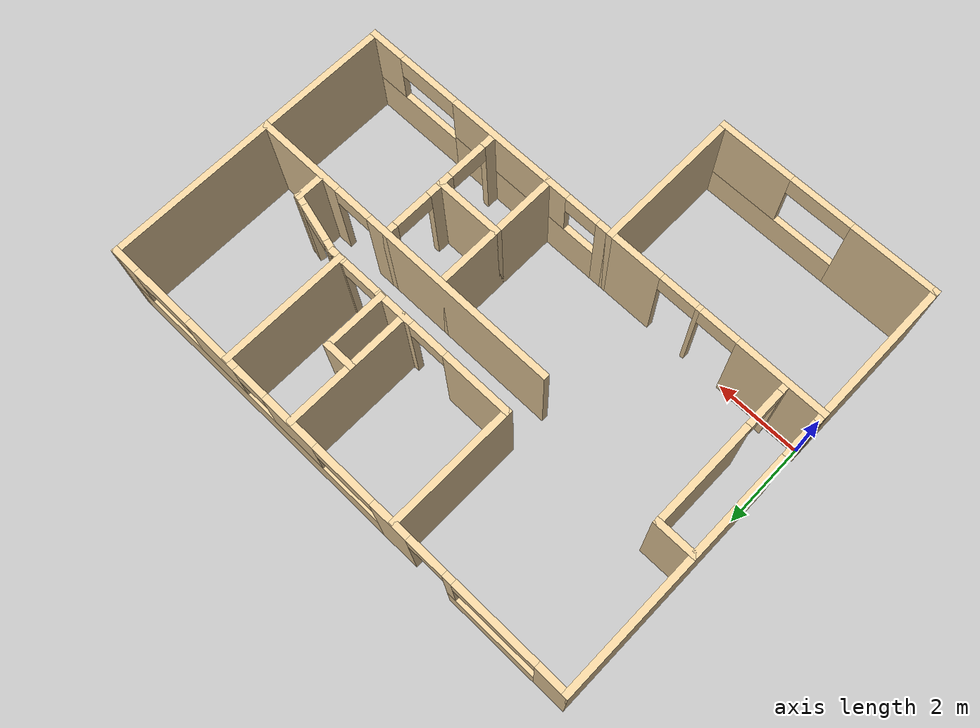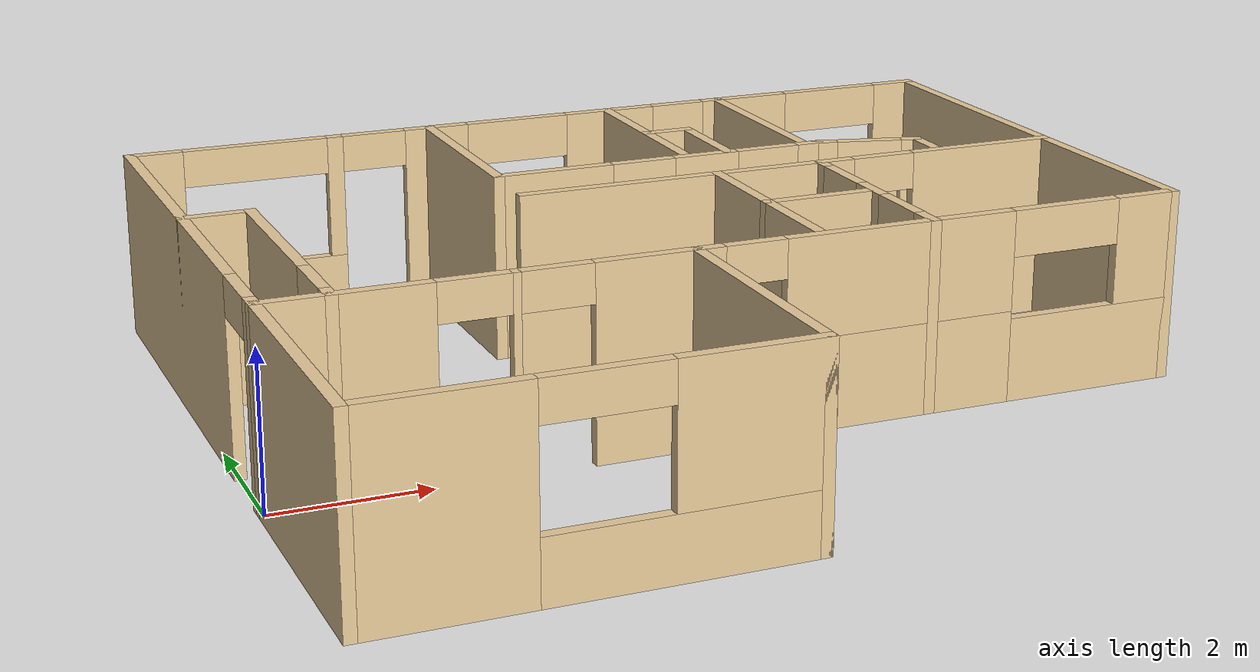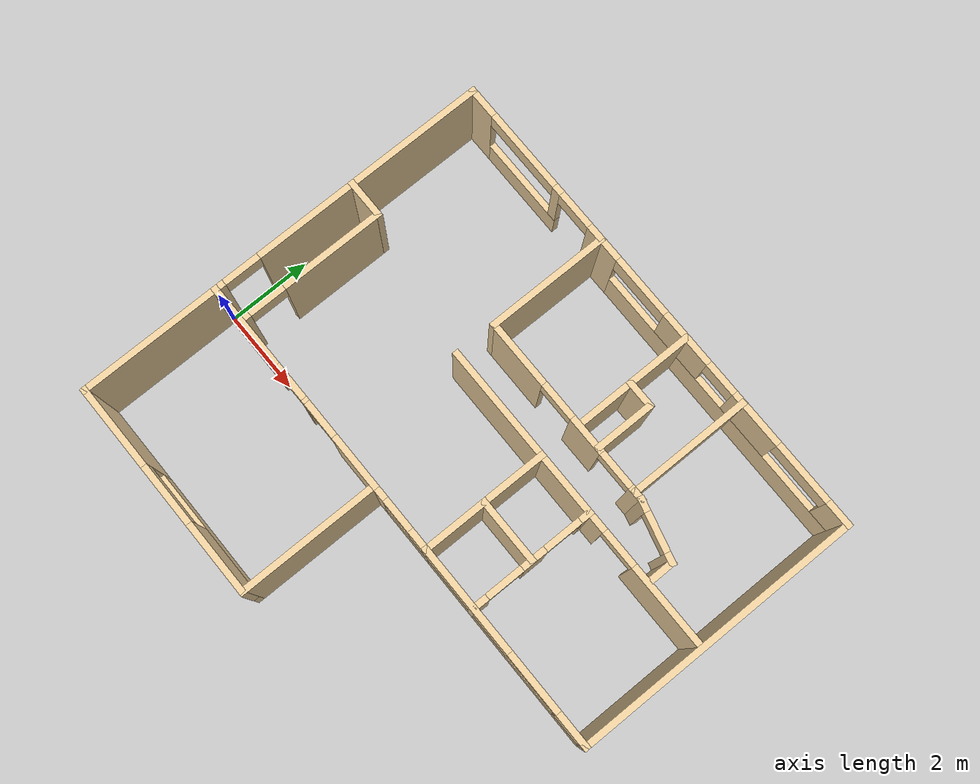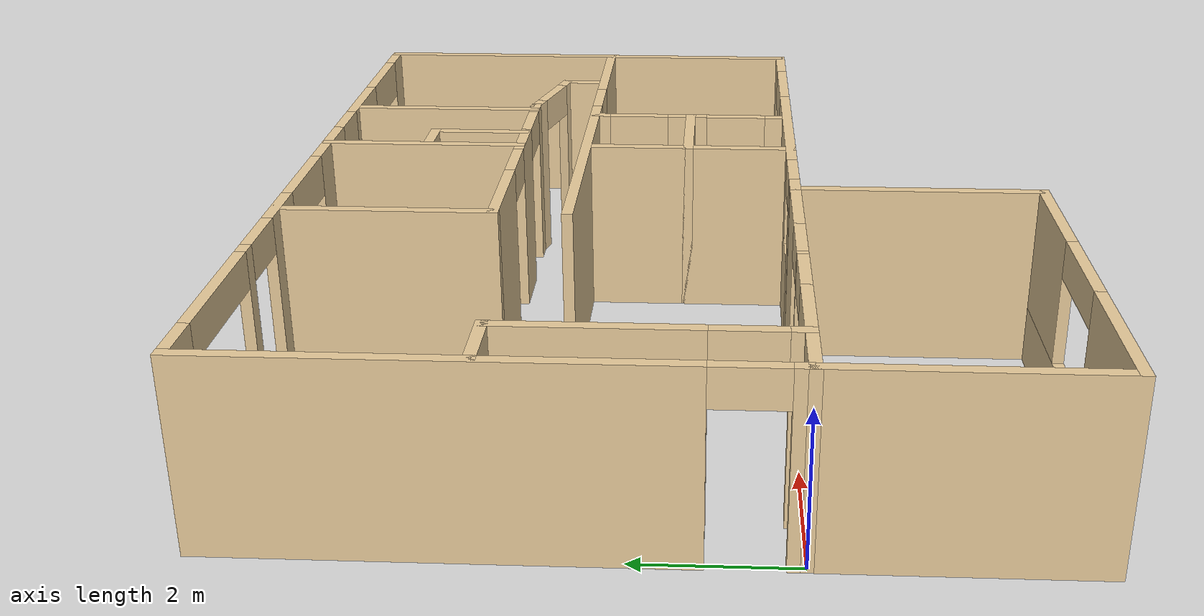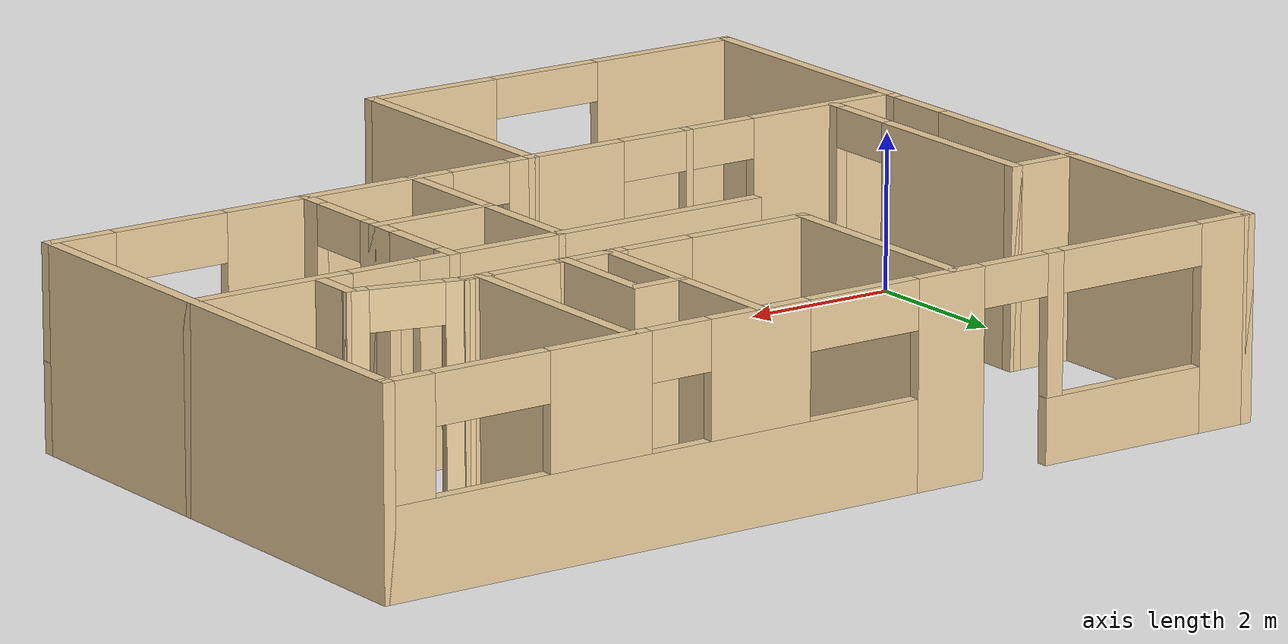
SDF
<?xml version='1.0'?>
<sdf version='1.6'>
  <model name='SupaHouse'>
    <pose frame=''>5.925 1.75 0 0 -0 0</pose>
    <link name='Wall_0'>
      <pose frame=''>-3.3 -1.75 0 0 -0 0</pose>
      <visual name='Wall_0_Visual_0'>
        <pose frame=''>-1.6375 0 1.25 0 -0 0</pose>
        <geometry>
          <box>
            <size>2.125 0.15 2.5</size>
          </box>
        </geometry>
        <material>
          <script>
            <uri>file://media/materials/scripts/gazebo.material</uri>
            <name>Gazebo/Grey</name>
          </script>
          <ambient>0.921569 0.807843 0.615686 1</ambient>
        </material>
        <meta>
          <layer>0</layer>
        </meta>
      </visual>
      <collision name='Wall_0_Collision_0'>
        <geometry>
          <box>
            <size>2.125 0.15 2.5</size>
          </box>
        </geometry>
        <pose frame=''>-1.6375 0 1.25 0 -0 0</pose>
      </collision>
      <visual name='Wall_0_Visual_1'>
        <pose frame=''>0.375 0 1.25 0 -0 0</pose>
        <geometry>
          <box>
            <size>0.1 0.15 2.5</size>
          </box>
        </geometry>
        <material>
          <script>
            <uri>file://media/materials/scripts/gazebo.material</uri>
            <name>Gazebo/Grey</name>
          </script>
          <ambient>0.921569 0.807843 0.615686 1</ambient>
        </material>
        <meta>
          <layer>0</layer>
        </meta>
      </visual>
      <collision name='Wall_0_Collision_1'>
        <geometry>
          <box>
            <size>0.1 0.15 2.5</size>
          </box>
        </geometry>
        <pose frame=''>0.375 0 1.25 0 -0 0</pose>
      </collision>
      <visual name='Wall_0_Visual_2'>
        <pose frame=''>2.0125 0 1.25 0 -0 0</pose>
        <geometry>
          <box>
            <size>1.375 0.15 2.5</size>
          </box>
        </geometry>
        <material>
          <script>
            <uri>file://media/materials/scripts/gazebo.material</uri>
            <name>Gazebo/Grey</name>
          </script>
          <ambient>0.921569 0.807843 0.615686 1</ambient>
        </material>
        <meta>
          <layer>0</layer>
        </meta>
      </visual>
      <collision name='Wall_0_Collision_2'>
        <geometry>
          <box>
            <size>1.375 0.15 2.5</size>
          </box>
        </geometry>
        <pose frame=''>2.0125 0 1.25 0 -0 0</pose>
      </collision>
      <visual name='Wall_0_Visual_3'>
        <pose frame=''>-0.125 0 2.25 0 -0 0</pose>
        <geometry>
          <box>
            <size>0.9 0.15 0.5</size>
          </box>
        </geometry>
        <material>
          <script>
            <uri>file://media/materials/scripts/gazebo.material</uri>
            <name>Gazebo/Grey</name>
          </script>
          <ambient>0.921569 0.807843 0.615686 1</ambient>
        </material>
        <meta>
          <layer>0</layer>
        </meta>
      </visual>
      <collision name='Wall_0_Collision_3'>
        <geometry>
          <box>
            <size>0.9 0.15 0.5</size>
          </box>
        </geometry>
        <pose frame=''>-0.125 0 2.25 0 -0 0</pose>
      </collision>
      <visual name='Wall_0_Visual_4'>
        <pose frame=''>0.875 0 2.25 0 -0 0</pose>
        <geometry>
          <box>
            <size>0.9 0.15 0.5</size>
          </box>
        </geometry>
        <material>
          <script>
            <uri>file://media/materials/scripts/gazebo.material</uri>
            <name>Gazebo/Grey</name>
          </script>
          <ambient>0.921569 0.807843 0.615686 1</ambient>
        </material>
        <meta>
          <layer>0</layer>
        </meta>
      </visual>
      <collision name='Wall_0_Collision_4'>
        <geometry>
          <box>
            <size>0.9 0.15 0.5</size>
          </box>
        </geometry>
        <pose frame=''>0.875 0 2.25 0 -0 0</pose>
      </collision>
    </link>
    <link name='Wall_11'>
      <pose frame=''>2.625 -1.75 0 0 -0 0</pose>
      <visual name='Wall_11_Visual_0'>
        <pose frame=''>-3.1625 0 1.25 0 -0 0</pose>
        <geometry>
          <box>
            <size>0.425 0.15 2.5</size>
          </box>
        </geometry>
        <material>
          <script>
            <uri>file://media/materials/scripts/gazebo.material</uri>
            <name>Gazebo/Grey</name>
          </script>
          <ambient>0.921569 0.807843 0.615686 1</ambient>
        </material>
        <meta>
          <layer>0</layer>
        </meta>
      </visual>
      <collision name='Wall_11_Collision_0'>
        <geometry>
          <box>
            <size>0.425 0.15 2.5</size>
          </box>
        </geometry>
        <pose frame=''>-3.1625 0 1.25 0 -0 0</pose>
      </collision>
      <visual name='Wall_11_Visual_1'>
        <pose frame=''>-0.987667 0 0.6 0 -0 0</pose>
        <geometry>
          <box>
            <size>3.92467 0.15 1.2</size>
          </box>
        </geometry>
        <material>
          <script>
            <uri>file://media/materials/scripts/gazebo.material</uri>
            <name>Gazebo/Grey</name>
          </script>
          <ambient>0.921569 0.807843 0.615686 1</ambient>
        </material>
        <meta>
          <layer>0</layer>
        </meta>
      </visual>
      <collision name='Wall_11_Collision_1'>
        <geometry>
          <box>
            <size>3.92467 0.15 1.2</size>
          </box>
        </geometry>
        <pose frame=''>-0.987667 0 0.6 0 -0 0</pose>
      </collision>
      <visual name='Wall_11_Visual_2'>
        <pose frame=''>2.17483 0 0.55 0 -0 0</pose>
        <geometry>
          <box>
            <size>2.40033 0.15 1.1</size>
          </box>
        </geometry>
        <material>
          <script>
            <uri>file://media/materials/scripts/gazebo.material</uri>
            <name>Gazebo/Grey</name>
          </script>
          <ambient>0.921569 0.807843 0.615686 1</ambient>
        </material>
        <meta>
          <layer>0</layer>
        </meta>
      </visual>
      <collision name='Wall_11_Collision_2'>
        <geometry>
          <box>
            <size>2.40033 0.15 1.1</size>
          </box>
        </geometry>
        <pose frame=''>2.17483 0 0.55 0 -0 0</pose>
      </collision>
      <visual name='Wall_11_Visual_3'>
        <pose frame=''>2.92483 0 1.8 0 -0 0</pose>
        <geometry>
          <box>
            <size>0.900333 0.15 1.4</size>
          </box>
        </geometry>
        <material>
          <script>
            <uri>file://media/materials/scripts/gazebo.material</uri>
            <name>Gazebo/Grey</name>
          </script>
          <ambient>0.921569 0.807843 0.615686 1</ambient>
        </material>
        <meta>
          <layer>0</layer>
        </meta>
      </visual>
      <collision name='Wall_11_Collision_3'>
        <geometry>
          <box>
            <size>0.900333 0.15 1.4</size>
          </box>
        </geometry>
        <pose frame=''>2.92483 0 1.8 0 -0 0</pose>
      </collision>
      <visual name='Wall_11_Visual_4'>
        <pose frame=''>-0.587667 0 1.85 0 -0 0</pose>
        <geometry>
          <box>
            <size>3.12467 0.15 1.3</size>
          </box>
        </geometry>
        <material>
          <script>
            <uri>file://media/materials/scripts/gazebo.material</uri>
            <name>Gazebo/Grey</name>
          </script>
          <ambient>0.921569 0.807843 0.615686 1</ambient>
        </material>
        <meta>
          <layer>0</layer>
        </meta>
      </visual>
      <collision name='Wall_11_Collision_4'>
        <geometry>
          <box>
            <size>3.12467 0.15 1.3</size>
          </box>
        </geometry>
        <pose frame=''>-0.587667 0 1.85 0 -0 0</pose>
      </collision>
      <visual name='Wall_11_Visual_5'>
        <pose frame=''>1.72467 0 2.2 0 -0 0</pose>
        <geometry>
          <box>
            <size>1.5 0.15 0.6</size>
          </box>
        </geometry>
        <material>
          <script>
            <uri>file://media/materials/scripts/gazebo.material</uri>
            <name>Gazebo/Grey</name>
          </script>
          <ambient>0.921569 0.807843 0.615686 1</ambient>
        </material>
        <meta>
          <layer>0</layer>
        </meta>
      </visual>
      <collision name='Wall_11_Collision_5'>
        <geometry>
          <box>
            <size>1.5 0.15 0.6</size>
          </box>
        </geometry>
        <pose frame=''>1.72467 0 2.2 0 -0 0</pose>
      </collision>
      <visual name='Wall_11_Visual_6'>
        <pose frame=''>-2.55 0 2.25 0 -0 0</pose>
        <geometry>
          <box>
            <size>0.8 0.15 0.5</size>
          </box>
        </geometry>
        <material>
          <script>
            <uri>file://media/materials/scripts/gazebo.material</uri>
            <name>Gazebo/Grey</name>
          </script>
          <ambient>0.921569 0.807843 0.615686 1</ambient>
        </material>
        <meta>
          <layer>0</layer>
        </meta>
      </visual>
      <collision name='Wall_11_Collision_6'>
        <geometry>
          <box>
            <size>0.8 0.15 0.5</size>
          </box>
        </geometry>
        <pose frame=''>-2.55 0 2.25 0 -0 0</pose>
      </collision>
    </link>
    <link name='Wall_13'>
      <collision name='Wall_13_Collision'>
        <geometry>
          <box>
            <size>1 0.15 2.5</size>
          </box>
        </geometry>
        <pose frame=''>0 0 1.25 0 -0 0</pose>
      </collision>
      <visual name='Wall_13_Visual'>
        <pose frame=''>0 0 1.25 0 -0 0</pose>
        <geometry>
          <box>
            <size>1 0.15 2.5</size>
          </box>
        </geometry>
        <material>
          <script>
            <uri>file://media/materials/scripts/gazebo.material</uri>
            <name>Gazebo/Grey</name>
          </script>
          <ambient>0.921569 0.807843 0.615686 1</ambient>
        </material>
        <meta>
          <layer>0</layer>
        </meta>
      </visual>
      <pose frame=''>-5.5 1.85 0 0 -0 0</pose>
    </link>
    <link name='Wall_17'>
      <collision name='Wall_17_Collision'>
        <geometry>
          <box>
            <size>3 0.15 2.5</size>
          </box>
        </geometry>
        <pose frame=''>0 0 1.25 0 -0 0</pose>
      </collision>
      <visual name='Wall_17_Visual'>
        <pose frame=''>0 0 1.25 0 -0 0</pose>
        <geometry>
          <box>
            <size>3 0.15 2.5</size>
          </box>
        </geometry>
        <material>
          <script>
            <uri>file://media/materials/scripts/gazebo.material</uri>
            <name>Gazebo/Grey</name>
          </script>
          <ambient>0.921569 0.807843 0.615686 1</ambient>
        </material>
        <meta>
          <layer>0</layer>
        </meta>
      </visual>
      <pose frame=''>-1.725 3.653 0 0 0 -1.5708</pose>
    </link>
    <link name='Wall_2'>
      <collision name='Wall_2_Collision'>
        <geometry>
          <box>
            <size>3.5 0.15 2.5</size>
          </box>
        </geometry>
        <pose frame=''>0 0 1.25 0 -0 0</pose>
      </collision>
      <visual name='Wall_2_Visual'>
        <pose frame=''>0 0 1.25 0 -0 0</pose>
        <geometry>
          <box>
            <size>3.5 0.15 2.5</size>
          </box>
        </geometry>
        <material>
          <script>
            <uri>file://media/materials/scripts/gazebo.material</uri>
            <name>Gazebo/Grey</name>
          </script>
          <ambient>0.921569 0.807843 0.615686 1</ambient>
        </material>
        <meta>
          <layer>0</layer>
        </meta>
      </visual>
      <pose frame=''>-5.925 -3.425 0 0 0 -1.5708</pose>
    </link>
    <link name='Wall_26'>
      <collision name='Wall_26_Collision'>
        <geometry>
          <box>
            <size>3 0.15 2.5</size>
          </box>
        </geometry>
        <pose frame=''>0 0 1.25 0 -0 0</pose>
      </collision>
      <visual name='Wall_26_Visual'>
        <pose frame=''>0 0 1.25 0 -0 0</pose>
        <geometry>
          <box>
            <size>3 0.15 2.5</size>
          </box>
        </geometry>
        <material>
          <script>
            <uri>file://media/materials/scripts/gazebo.material</uri>
            <name>Gazebo/Grey</name>
          </script>
          <ambient>0.921569 0.807843 0.615686 1</ambient>
        </material>
        <meta>
          <layer>0</layer>
        </meta>
      </visual>
      <pose frame=''>0.975 3.662 0 0 -0 1.5708</pose>
    </link>
    <link name='Wall_28'>
      <collision name='Wall_28_Collision'>
        <geometry>
          <box>
            <size>0.75 0.15 2.5</size>
          </box>
        </geometry>
        <pose frame=''>0 0 1.25 0 -0 0</pose>
      </collision>
      <visual name='Wall_28_Visual'>
        <pose frame=''>0 0 1.25 0 -0 0</pose>
        <geometry>
          <box>
            <size>0.75 0.15 2.5</size>
          </box>
        </geometry>
        <material>
          <script>
            <uri>file://media/materials/scripts/gazebo.material</uri>
            <name>Gazebo/Grey</name>
          </script>
          <ambient>0.921569 0.807843 0.615686 1</ambient>
        </material>
        <meta>
          <layer>0</layer>
        </meta>
      </visual>
      <pose frame=''>1.279 3.6 0 0 -0 0</pose>
    </link>
    <link name='Wall_3'>
      <pose frame=''>-3.3 -5.1 0 0 -0 0</pose>
      <visual name='Wall_3_Visual_0'>
        <pose frame=''>-1.6625 0 1.25 0 -0 0</pose>
        <geometry>
          <box>
            <size>2.075 0.15 2.5</size>
          </box>
        </geometry>
        <material>
          <script>
            <uri>file://media/materials/scripts/gazebo.material</uri>
            <name>Gazebo/Grey</name>
          </script>
          <ambient>0.921569 0.807843 0.615686 1</ambient>
        </material>
        <meta>
          <layer>0</layer>
        </meta>
      </visual>
      <collision name='Wall_3_Collision_0'>
        <geometry>
          <box>
            <size>2.075 0.15 2.5</size>
          </box>
        </geometry>
        <pose frame=''>-1.6625 0 1.25 0 -0 0</pose>
      </collision>
      <visual name='Wall_3_Visual_1'>
        <pose frame=''>1.0375 0 0.4 0 -0 0</pose>
        <geometry>
          <box>
            <size>3.325 0.15 0.8</size>
          </box>
        </geometry>
        <material>
          <script>
            <uri>file://media/materials/scripts/gazebo.material</uri>
            <name>Gazebo/Grey</name>
          </script>
          <ambient>0.921569 0.807843 0.615686 1</ambient>
        </material>
        <meta>
          <layer>0</layer>
        </meta>
      </visual>
      <collision name='Wall_3_Collision_1'>
        <geometry>
          <box>
            <size>3.325 0.15 0.8</size>
          </box>
        </geometry>
        <pose frame=''>1.0375 0 0.4 0 -0 0</pose>
      </collision>
      <visual name='Wall_3_Visual_2'>
        <pose frame=''>1.7875 0 1.65 0 -0 0</pose>
        <geometry>
          <box>
            <size>1.825 0.15 1.7</size>
          </box>
        </geometry>
        <material>
          <script>
            <uri>file://media/materials/scripts/gazebo.material</uri>
            <name>Gazebo/Grey</name>
          </script>
          <ambient>0.921569 0.807843 0.615686 1</ambient>
        </material>
        <meta>
          <layer>0</layer>
        </meta>
      </visual>
      <collision name='Wall_3_Collision_2'>
        <geometry>
          <box>
            <size>1.825 0.15 1.7</size>
          </box>
        </geometry>
        <pose frame=''>1.7875 0 1.65 0 -0 0</pose>
      </collision>
      <visual name='Wall_3_Visual_3'>
        <pose frame=''>0.125 0 2.25 0 -0 0</pose>
        <geometry>
          <box>
            <size>1.5 0.15 0.5</size>
          </box>
        </geometry>
        <material>
          <script>
            <uri>file://media/materials/scripts/gazebo.material</uri>
            <name>Gazebo/Grey</name>
          </script>
          <ambient>0.921569 0.807843 0.615686 1</ambient>
        </material>
        <meta>
          <layer>0</layer>
        </meta>
      </visual>
      <collision name='Wall_3_Collision_3'>
        <geometry>
          <box>
            <size>1.5 0.15 0.5</size>
          </box>
        </geometry>
        <pose frame=''>0.125 0 2.25 0 -0 0</pose>
      </collision>
    </link>
    <link name='Wall_30'>
      <collision name='Wall_30_Collision'>
        <geometry>
          <box>
            <size>1.5 0.15 2.5</size>
          </box>
        </geometry>
        <pose frame=''>0 0 1.25 0 -0 0</pose>
      </collision>
      <visual name='Wall_30_Visual'>
        <pose frame=''>0 0 1.25 0 -0 0</pose>
        <geometry>
          <box>
            <size>1.5 0.15 2.5</size>
          </box>
        </geometry>
        <material>
          <script>
            <uri>file://media/materials/scripts/gazebo.material</uri>
            <name>Gazebo/Grey</name>
          </script>
          <ambient>0.921569 0.807843 0.615686 1</ambient>
        </material>
        <meta>
          <layer>0</layer>
        </meta>
      </visual>
      <pose frame=''>1.579 2.925 0 0 0 -1.5708</pose>
    </link>
    <link name='Wall_37'>
      <collision name='Wall_37_Collision'>
        <geometry>
          <box>
            <size>3 0.15 2.5</size>
          </box>
        </geometry>
        <pose frame=''>0 0 1.25 0 -0 0</pose>
      </collision>
      <visual name='Wall_37_Visual'>
        <pose frame=''>0 0 1.25 0 -0 0</pose>
        <geometry>
          <box>
            <size>3 0.15 2.5</size>
          </box>
        </geometry>
        <material>
          <script>
            <uri>file://media/materials/scripts/gazebo.material</uri>
            <name>Gazebo/Grey</name>
          </script>
          <ambient>0.921569 0.807843 0.615686 1</ambient>
        </material>
        <meta>
          <layer>0</layer>
        </meta>
      </visual>
      <pose frame=''>2.729 3.662 0 0 0 -1.5708</pose>
    </link>
    <link name='Wall_43'>
      <collision name='Wall_43_Collision'>
        <geometry>
          <box>
            <size>3.15 0.15 2.5</size>
          </box>
        </geometry>
        <pose frame=''>0 0 1.25 0 -0 0</pose>
      </collision>
      <visual name='Wall_43_Visual'>
        <pose frame=''>0 0 1.25 0 -0 0</pose>
        <geometry>
          <box>
            <size>3.15 0.15 2.5</size>
          </box>
        </geometry>
        <material>
          <script>
            <uri>file://media/materials/scripts/gazebo.material</uri>
            <name>Gazebo/Grey</name>
          </script>
          <ambient>0.921569 0.807843 0.615686 1</ambient>
        </material>
        <meta>
          <layer>0</layer>
        </meta>
      </visual>
      <pose frame=''>0.975 -0.25 0 0 0 -1.5708</pose>
    </link>
    <link name='Wall_45'>
      <collision name='Wall_45_Collision'>
        <geometry>
          <box>
            <size>0.65 0.15 2.5</size>
          </box>
        </geometry>
        <pose frame=''>0 0 1.25 0 -0 0</pose>
      </collision>
      <visual name='Wall_45_Visual'>
        <pose frame=''>0 0 1.25 0 -0 0</pose>
        <geometry>
          <box>
            <size>0.65 0.15 2.5</size>
          </box>
        </geometry>
        <material>
          <script>
            <uri>file://media/materials/scripts/gazebo.material</uri>
            <name>Gazebo/Grey</name>
          </script>
          <ambient>0.921569 0.807843 0.615686 1</ambient>
        </material>
        <meta>
          <layer>0</layer>
        </meta>
      </visual>
      <pose frame=''>4.275 1.628 0 0 -0 1.5708</pose>
    </link>
    <link name='Wall_5'>
      <collision name='Wall_5_Collision'>
        <geometry>
          <box>
            <size>3.5 0.15 2.5</size>
          </box>
        </geometry>
        <pose frame=''>0 0 1.25 0 -0 0</pose>
      </collision>
      <visual name='Wall_5_Visual'>
        <pose frame=''>0 0 1.25 0 -0 0</pose>
        <geometry>
          <box>
            <size>3.5 0.15 2.5</size>
          </box>
        </geometry>
        <material>
          <script>
            <uri>file://media/materials/scripts/gazebo.material</uri>
            <name>Gazebo/Grey</name>
          </script>
          <ambient>0.921569 0.807843 0.615686 1</ambient>
        </material>
        <meta>
          <layer>0</layer>
        </meta>
      </visual>
      <pose frame=''>-0.675 -3.425 0 0 0 -1.5708</pose>
    </link>
    <link name='Wall_52'>
      <pose frame=''>2.1 1.25 0 0 -0 0</pose>
      <visual name='Wall_52_Visual_0'>
        <pose frame=''>-1.525 0 1.25 0 -0 0</pose>
        <geometry>
          <box>
            <size>4.75 0.15 2.5</size>
          </box>
        </geometry>
        <material>
          <script>
            <uri>file://media/materials/scripts/gazebo.material</uri>
            <name>Gazebo/Grey</name>
          </script>
          <ambient>0.921569 0.807843 0.615686 1</ambient>
        </material>
        <meta>
          <layer>0</layer>
        </meta>
      </visual>
      <collision name='Wall_52_Collision_0'>
        <geometry>
          <box>
            <size>4.75 0.15 2.5</size>
          </box>
        </geometry>
        <pose frame=''>-1.525 0 1.25 0 -0 0</pose>
      </collision>
      <visual name='Wall_52_Visual_1'>
        <pose frame=''>2.825 0 1.25 0 -0 0</pose>
        <geometry>
          <box>
            <size>2.15 0.15 2.5</size>
          </box>
        </geometry>
        <material>
          <script>
            <uri>file://media/materials/scripts/gazebo.material</uri>
            <name>Gazebo/Grey</name>
          </script>
          <ambient>0.921569 0.807843 0.615686 1</ambient>
        </material>
        <meta>
          <layer>0</layer>
        </meta>
      </visual>
      <collision name='Wall_52_Collision_1'>
        <geometry>
          <box>
            <size>2.15 0.15 2.5</size>
          </box>
        </geometry>
        <pose frame=''>2.825 0 1.25 0 -0 0</pose>
      </collision>
      <visual name='Wall_52_Visual_2'>
        <pose frame=''>1.3 0 2.25 0 -0 0</pose>
        <geometry>
          <box>
            <size>0.9 0.15 0.5</size>
          </box>
        </geometry>
        <material>
          <script>
            <uri>file://media/materials/scripts/gazebo.material</uri>
            <name>Gazebo/Grey</name>
          </script>
          <ambient>0.921569 0.807843 0.615686 1</ambient>
        </material>
        <meta>
          <layer>0</layer>
        </meta>
      </visual>
      <collision name='Wall_52_Collision_2'>
        <geometry>
          <box>
            <size>0.9 0.15 0.5</size>
          </box>
        </geometry>
        <pose frame=''>1.3 0 2.25 0 -0 0</pose>
      </collision>
    </link>
    <link name='Wall_54'>
      <pose frame=''>2.475 -0.25 0 0 0 -1.5708</pose>
      <visual name='Wall_54_Visual_0'>
        <pose frame=''>-1.41404 0 1.25 0 -0 0</pose>
        <geometry>
          <box>
            <size>0.321921 0.15 2.5</size>
          </box>
        </geometry>
        <material>
          <script>
            <uri>file://media/materials/scripts/gazebo.material</uri>
            <name>Gazebo/Grey</name>
          </script>
          <ambient>0.921569 0.807843 0.615686 1</ambient>
        </material>
        <meta>
          <layer>0</layer>
        </meta>
      </visual>
      <collision name='Wall_54_Collision_0'>
        <geometry>
          <box>
            <size>0.321921 0.15 2.5</size>
          </box>
        </geometry>
        <pose frame=''>-1.41404 0 1.25 0 -0 0</pose>
      </collision>
      <visual name='Wall_54_Visual_1'>
        <pose frame=''>-0.05086 0 1.25 0 -0 0</pose>
        <geometry>
          <box>
            <size>0.604438 0.15 2.5</size>
          </box>
        </geometry>
        <material>
          <script>
            <uri>file://media/materials/scripts/gazebo.material</uri>
            <name>Gazebo/Grey</name>
          </script>
          <ambient>0.921569 0.807843 0.615686 1</ambient>
        </material>
        <meta>
          <layer>0</layer>
        </meta>
      </visual>
      <collision name='Wall_54_Collision_1'>
        <geometry>
          <box>
            <size>0.604438 0.15 2.5</size>
          </box>
        </geometry>
        <pose frame=''>-0.05086 0 1.25 0 -0 0</pose>
      </collision>
      <visual name='Wall_54_Visual_2'>
        <pose frame=''>1.36318 0 1.25 0 -0 0</pose>
        <geometry>
          <box>
            <size>0.423641 0.15 2.5</size>
          </box>
        </geometry>
        <material>
          <script>
            <uri>file://media/materials/scripts/gazebo.material</uri>
            <name>Gazebo/Grey</name>
          </script>
          <ambient>0.921569 0.807843 0.615686 1</ambient>
        </material>
        <meta>
          <layer>0</layer>
        </meta>
      </visual>
      <collision name='Wall_54_Collision_2'>
        <geometry>
          <box>
            <size>0.423641 0.15 2.5</size>
          </box>
        </geometry>
        <pose frame=''>1.36318 0 1.25 0 -0 0</pose>
      </collision>
      <visual name='Wall_54_Visual_3'>
        <pose frame=''>-0.803079 0 2.25 0 -0 0</pose>
        <geometry>
          <box>
            <size>0.9 0.15 0.5</size>
          </box>
        </geometry>
        <material>
          <script>
            <uri>file://media/materials/scripts/gazebo.material</uri>
            <name>Gazebo/Grey</name>
          </script>
          <ambient>0.921569 0.807843 0.615686 1</ambient>
        </material>
        <meta>
          <layer>0</layer>
        </meta>
      </visual>
      <collision name='Wall_54_Collision_3'>
        <geometry>
          <box>
            <size>0.9 0.15 0.5</size>
          </box>
        </geometry>
        <pose frame=''>-0.803079 0 2.25 0 -0 0</pose>
      </collision>
      <visual name='Wall_54_Visual_4'>
        <pose frame=''>0.701359 0 2.25 0 -0 0</pose>
        <geometry>
          <box>
            <size>0.9 0.15 0.5</size>
          </box>
        </geometry>
        <material>
          <script>
            <uri>file://media/materials/scripts/gazebo.material</uri>
            <name>Gazebo/Grey</name>
          </script>
          <ambient>0.921569 0.807843 0.615686 1</ambient>
        </material>
        <meta>
          <layer>0</layer>
        </meta>
      </visual>
      <collision name='Wall_54_Collision_4'>
        <geometry>
          <box>
            <size>0.9 0.15 0.5</size>
          </box>
        </geometry>
        <pose frame=''>0.701359 0 2.25 0 -0 0</pose>
      </collision>
    </link>
    <link name='Wall_59'>
      <pose frame=''>-5.075 0.05 0 0 -0 1.5708</pose>
      <visual name='Wall_59_Visual_0'>
        <pose frame=''>-1.72516 0 1.25 0 -0 0</pose>
        <geometry>
          <box>
            <size>0.299689 0.15 2.5</size>
          </box>
        </geometry>
        <material>
          <script>
            <uri>file://media/materials/scripts/gazebo.material</uri>
            <name>Gazebo/Grey</name>
          </script>
          <ambient>0.921569 0.807843 0.615686 1</ambient>
        </material>
        <meta>
          <layer>0</layer>
        </meta>
      </visual>
      <collision name='Wall_59_Collision_0'>
        <geometry>
          <box>
            <size>0.299689 0.15 2.5</size>
          </box>
        </geometry>
        <pose frame=''>-1.72516 0 1.25 0 -0 0</pose>
      </collision>
      <visual name='Wall_59_Visual_1'>
        <pose frame=''>0.599844 0 1.25 0 -0 0</pose>
        <geometry>
          <box>
            <size>2.55031 0.15 2.5</size>
          </box>
        </geometry>
        <material>
          <script>
            <uri>file://media/materials/scripts/gazebo.material</uri>
            <name>Gazebo/Grey</name>
          </script>
          <ambient>0.921569 0.807843 0.615686 1</ambient>
        </material>
        <meta>
          <layer>0</layer>
        </meta>
      </visual>
      <collision name='Wall_59_Collision_1'>
        <geometry>
          <box>
            <size>2.55031 0.15 2.5</size>
          </box>
        </geometry>
        <pose frame=''>0.599844 0 1.25 0 -0 0</pose>
      </collision>
      <visual name='Wall_59_Visual_2'>
        <pose frame=''>-1.12531 0 2.25 0 -0 0</pose>
        <geometry>
          <box>
            <size>0.9 0.15 0.5</size>
          </box>
        </geometry>
        <material>
          <script>
            <uri>file://media/materials/scripts/gazebo.material</uri>
            <name>Gazebo/Grey</name>
          </script>
          <ambient>0.921569 0.807843 0.615686 1</ambient>
        </material>
        <meta>
          <layer>0</layer>
        </meta>
      </visual>
      <collision name='Wall_59_Collision_2'>
        <geometry>
          <box>
            <size>0.9 0.15 0.5</size>
          </box>
        </geometry>
        <pose frame=''>-1.12531 0 2.25 0 -0 0</pose>
      </collision>
    </link>
    <link name='Wall_61'>
      <pose frame=''>0.6 2.228 0 0 -0 3.14159</pose>
      <visual name='Wall_61_Visual_0'>
        <pose frame=''>-2.2 0 1.25 0 -0 0</pose>
        <geometry>
          <box>
            <size>0.4 0.15 2.5</size>
          </box>
        </geometry>
        <material>
          <script>
            <uri>file://media/materials/scripts/gazebo.material</uri>
            <name>Gazebo/Grey</name>
          </script>
          <ambient>0.921569 0.807843 0.615686 1</ambient>
        </material>
        <meta>
          <layer>0</layer>
        </meta>
      </visual>
      <collision name='Wall_61_Collision_0'>
        <geometry>
          <box>
            <size>0.4 0.15 2.5</size>
          </box>
        </geometry>
        <pose frame=''>-2.2 0 1.25 0 -0 0</pose>
      </collision>
      <visual name='Wall_61_Visual_1'>
        <pose frame=''>-0.6375 0 1.25 0 -0 0</pose>
        <geometry>
          <box>
            <size>0.925 0.15 2.5</size>
          </box>
        </geometry>
        <material>
          <script>
            <uri>file://media/materials/scripts/gazebo.material</uri>
            <name>Gazebo/Grey</name>
          </script>
          <ambient>0.921569 0.807843 0.615686 1</ambient>
        </material>
        <meta>
          <layer>0</layer>
        </meta>
      </visual>
      <collision name='Wall_61_Collision_1'>
        <geometry>
          <box>
            <size>0.925 0.15 2.5</size>
          </box>
        </geometry>
        <pose frame=''>-0.6375 0 1.25 0 -0 0</pose>
      </collision>
      <visual name='Wall_61_Visual_2'>
        <pose frame=''>1.5625 0 1.25 0 -0 0</pose>
        <geometry>
          <box>
            <size>1.675 0.15 2.5</size>
          </box>
        </geometry>
        <material>
          <script>
            <uri>file://media/materials/scripts/gazebo.material</uri>
            <name>Gazebo/Grey</name>
          </script>
          <ambient>0.921569 0.807843 0.615686 1</ambient>
        </material>
        <meta>
          <layer>0</layer>
        </meta>
      </visual>
      <collision name='Wall_61_Collision_2'>
        <geometry>
          <box>
            <size>1.675 0.15 2.5</size>
          </box>
        </geometry>
        <pose frame=''>1.5625 0 1.25 0 -0 0</pose>
      </collision>
      <visual name='Wall_61_Visual_3'>
        <pose frame=''>-1.55 0 2.25 0 -0 0</pose>
        <geometry>
          <box>
            <size>0.9 0.15 0.5</size>
          </box>
        </geometry>
        <material>
          <script>
            <uri>file://media/materials/scripts/gazebo.material</uri>
            <name>Gazebo/Grey</name>
          </script>
          <ambient>0.921569 0.807843 0.615686 1</ambient>
        </material>
        <meta>
          <layer>0</layer>
        </meta>
      </visual>
      <collision name='Wall_61_Collision_3'>
        <geometry>
          <box>
            <size>0.9 0.15 0.5</size>
          </box>
        </geometry>
        <pose frame=''>-1.55 0 2.25 0 -0 0</pose>
      </collision>
      <visual name='Wall_61_Visual_4'>
        <pose frame=''>0.275 0 2.25 0 -0 0</pose>
        <geometry>
          <box>
            <size>0.9 0.15 0.5</size>
          </box>
        </geometry>
        <material>
          <script>
            <uri>file://media/materials/scripts/gazebo.material</uri>
            <name>Gazebo/Grey</name>
          </script>
          <ambient>0.921569 0.807843 0.615686 1</ambient>
        </material>
        <meta>
          <layer>0</layer>
        </meta>
      </visual>
      <collision name='Wall_61_Collision_4'>
        <geometry>
          <box>
            <size>0.9 0.15 0.5</size>
          </box>
        </geometry>
        <pose frame=''>0.275 0 2.25 0 -0 0</pose>
      </collision>
    </link>
    <link name='Wall_63'>
      <collision name='Wall_63_Collision'>
        <geometry>
          <box>
            <size>1.65 0.15 2.5</size>
          </box>
        </geometry>
        <pose frame=''>0 0 1.25 0 -0 0</pose>
      </collision>
      <visual name='Wall_63_Visual'>
        <pose frame=''>0 0 1.25 0 -0 0</pose>
        <geometry>
          <box>
            <size>1.65 0.15 2.5</size>
          </box>
        </geometry>
        <material>
          <script>
            <uri>file://media/materials/scripts/gazebo.material</uri>
            <name>Gazebo/Grey</name>
          </script>
          <ambient>0.921569 0.807843 0.615686 1</ambient>
        </material>
        <meta>
          <layer>0</layer>
        </meta>
      </visual>
      <pose frame=''>1.725 -0.25 0 0 -0 3.14159</pose>
    </link>
    <link name='Wall_65'>
      <pose frame=''>3.6 2.053 0 0 -0 2.88792</pose>
      <visual name='Wall_65_Visual_0'>
        <pose frame=''>-0.623979 0 1.25 0 -0 0</pose>
        <geometry>
          <box>
            <size>0.296674 0.15 2.5</size>
          </box>
        </geometry>
        <material>
          <script>
            <uri>file://media/materials/scripts/gazebo.material</uri>
            <name>Gazebo/Grey</name>
          </script>
          <ambient>0.921569 0.807843 0.615686 1</ambient>
        </material>
        <meta>
          <layer>0</layer>
        </meta>
      </visual>
      <collision name='Wall_65_Collision_0'>
        <geometry>
          <box>
            <size>0.296674 0.15 2.5</size>
          </box>
        </geometry>
        <pose frame=''>-0.623979 0 1.25 0 -0 0</pose>
      </collision>
      <visual name='Wall_65_Visual_1'>
        <pose frame=''>0.598337 0 1.25 0 -0 0</pose>
        <geometry>
          <box>
            <size>0.347958 0.15 2.5</size>
          </box>
        </geometry>
        <material>
          <script>
            <uri>file://media/materials/scripts/gazebo.material</uri>
            <name>Gazebo/Grey</name>
          </script>
          <ambient>0.921569 0.807843 0.615686 1</ambient>
        </material>
        <meta>
          <layer>0</layer>
        </meta>
      </visual>
      <collision name='Wall_65_Collision_1'>
        <geometry>
          <box>
            <size>0.347958 0.15 2.5</size>
          </box>
        </geometry>
        <pose frame=''>0.598337 0 1.25 0 -0 0</pose>
      </collision>
      <visual name='Wall_65_Visual_2'>
        <pose frame=''>-0.025642 0 2.25 0 -0 0</pose>
        <geometry>
          <box>
            <size>0.9 0.15 0.5</size>
          </box>
        </geometry>
        <material>
          <script>
            <uri>file://media/materials/scripts/gazebo.material</uri>
            <name>Gazebo/Grey</name>
          </script>
          <ambient>0.921569 0.807843 0.615686 1</ambient>
        </material>
        <meta>
          <layer>0</layer>
        </meta>
      </visual>
      <collision name='Wall_65_Collision_2'>
        <geometry>
          <box>
            <size>0.9 0.15 0.5</size>
          </box>
        </geometry>
        <pose frame=''>-0.025642 0 2.25 0 -0 0</pose>
      </collision>
    </link>
    <link name='Wall_7'>
      <pose frame=''>-5.925 1.675 0 0 -0 1.5708</pose>
      <visual name='Wall_7_Visual_0'>
        <pose frame=''>-3.35016 0 1.25 0 -0 0</pose>
        <geometry>
          <box>
            <size>0.299689 0.15 2.5</size>
          </box>
        </geometry>
        <material>
          <script>
            <uri>file://media/materials/scripts/gazebo.material</uri>
            <name>Gazebo/Grey</name>
          </script>
          <ambient>0.921569 0.807843 0.615686 1</ambient>
        </material>
        <meta>
          <layer>0</layer>
        </meta>
      </visual>
      <collision name='Wall_7_Collision_0'>
        <geometry>
          <box>
            <size>0.299689 0.15 2.5</size>
          </box>
        </geometry>
        <pose frame=''>-3.35016 0 1.25 0 -0 0</pose>
      </collision>
      <visual name='Wall_7_Visual_1'>
        <pose frame=''>0.599844 0 1.25 0 -0 0</pose>
        <geometry>
          <box>
            <size>5.80031 0.15 2.5</size>
          </box>
        </geometry>
        <material>
          <script>
            <uri>file://media/materials/scripts/gazebo.material</uri>
            <name>Gazebo/Grey</name>
          </script>
          <ambient>0.921569 0.807843 0.615686 1</ambient>
        </material>
        <meta>
          <layer>0</layer>
        </meta>
      </visual>
      <collision name='Wall_7_Collision_1'>
        <geometry>
          <box>
            <size>5.80031 0.15 2.5</size>
          </box>
        </geometry>
        <pose frame=''>0.599844 0 1.25 0 -0 0</pose>
      </collision>
      <visual name='Wall_7_Visual_2'>
        <pose frame=''>-2.75031 0 2.25 0 -0 0</pose>
        <geometry>
          <box>
            <size>0.9 0.15 0.5</size>
          </box>
        </geometry>
        <material>
          <script>
            <uri>file://media/materials/scripts/gazebo.material</uri>
            <name>Gazebo/Grey</name>
          </script>
          <ambient>0.921569 0.807843 0.615686 1</ambient>
        </material>
        <meta>
          <layer>0</layer>
        </meta>
      </visual>
      <collision name='Wall_7_Collision_2'>
        <geometry>
          <box>
            <size>0.9 0.15 0.5</size>
          </box>
        </geometry>
        <pose frame=''>-2.75031 0 2.25 0 -0 0</pose>
      </collision>
    </link>
    <link name='Wall_8'>
      <pose frame=''>0 5.1 0 0 -0 0</pose>
      <visual name='Wall_8_Visual_0'>
        <pose frame=''>-5.6125 0 1.25 0 -0 0</pose>
        <geometry>
          <box>
            <size>0.775 0.15 2.5</size>
          </box>
        </geometry>
        <material>
          <script>
            <uri>file://media/materials/scripts/gazebo.material</uri>
            <name>Gazebo/Grey</name>
          </script>
          <ambient>0.921569 0.807843 0.615686 1</ambient>
        </material>
        <meta>
          <layer>0</layer>
        </meta>
      </visual>
      <collision name='Wall_8_Collision_0'>
        <geometry>
          <box>
            <size>0.775 0.15 2.5</size>
          </box>
        </geometry>
        <pose frame=''>-5.6125 0 1.25 0 -0 0</pose>
      </collision>
      <visual name='Wall_8_Visual_1'>
        <pose frame=''>-1.6375 0 1.25 0 -0 0</pose>
        <geometry>
          <box>
            <size>0.925 0.15 2.5</size>
          </box>
        </geometry>
        <material>
          <script>
            <uri>file://media/materials/scripts/gazebo.material</uri>
            <name>Gazebo/Grey</name>
          </script>
          <ambient>0.921569 0.807843 0.615686 1</ambient>
        </material>
        <meta>
          <layer>0</layer>
        </meta>
      </visual>
      <collision name='Wall_8_Collision_1'>
        <geometry>
          <box>
            <size>0.925 0.15 2.5</size>
          </box>
        </geometry>
        <pose frame=''>-1.6375 0 1.25 0 -0 0</pose>
      </collision>
      <visual name='Wall_8_Visual_2'>
        <pose frame=''>-4.1125 0 0.4 0 -0 0</pose>
        <geometry>
          <box>
            <size>2.225 0.15 0.8</size>
          </box>
        </geometry>
        <material>
          <script>
            <uri>file://media/materials/scripts/gazebo.material</uri>
            <name>Gazebo/Grey</name>
          </script>
          <ambient>0.921569 0.807843 0.615686 1</ambient>
        </material>
        <meta>
          <layer>0</layer>
        </meta>
      </visual>
      <collision name='Wall_8_Collision_2'>
        <geometry>
          <box>
            <size>2.225 0.15 0.8</size>
          </box>
        </geometry>
        <pose frame=''>-4.1125 0 0.4 0 -0 0</pose>
      </collision>
      <visual name='Wall_8_Visual_3'>
        <pose frame=''>2.4125 0 0.55 0 -0 0</pose>
        <geometry>
          <box>
            <size>7.175 0.15 1.1</size>
          </box>
        </geometry>
        <material>
          <script>
            <uri>file://media/materials/scripts/gazebo.material</uri>
            <name>Gazebo/Grey</name>
          </script>
          <ambient>0.921569 0.807843 0.615686 1</ambient>
        </material>
        <meta>
          <layer>0</layer>
        </meta>
      </visual>
      <collision name='Wall_8_Collision_3'>
        <geometry>
          <box>
            <size>7.175 0.15 1.1</size>
          </box>
        </geometry>
        <pose frame=''>2.4125 0 0.55 0 -0 0</pose>
      </collision>
      <visual name='Wall_8_Visual_4'>
        <pose frame=''>-3.1125 0 1.65 0 -0 0</pose>
        <geometry>
          <box>
            <size>0.225 0.15 1.7</size>
          </box>
        </geometry>
        <material>
          <script>
            <uri>file://media/materials/scripts/gazebo.material</uri>
            <name>Gazebo/Grey</name>
          </script>
          <ambient>0.921569 0.807843 0.615686 1</ambient>
        </material>
        <meta>
          <layer>0</layer>
        </meta>
      </visual>
      <collision name='Wall_8_Collision_4'>
        <geometry>
          <box>
            <size>0.225 0.15 1.7</size>
          </box>
        </geometry>
        <pose frame=''>-3.1125 0 1.65 0 -0 0</pose>
      </collision>
      <visual name='Wall_8_Visual_5'>
        <pose frame=''>1 0 1.8 0 -0 0</pose>
        <geometry>
          <box>
            <size>1.35 0.15 1.4</size>
          </box>
        </geometry>
        <material>
          <script>
            <uri>file://media/materials/scripts/gazebo.material</uri>
            <name>Gazebo/Grey</name>
          </script>
          <ambient>0.921569 0.807843 0.615686 1</ambient>
        </material>
        <meta>
          <layer>0</layer>
        </meta>
      </visual>
      <collision name='Wall_8_Collision_5'>
        <geometry>
          <box>
            <size>1.35 0.15 1.4</size>
          </box>
        </geometry>
        <pose frame=''>1 0 1.8 0 -0 0</pose>
      </collision>
      <visual name='Wall_8_Visual_6'>
        <pose frame=''>3.15 0 1.8 0 -0 0</pose>
        <geometry>
          <box>
            <size>1.35 0.15 1.4</size>
          </box>
        </geometry>
        <material>
          <script>
            <uri>file://media/materials/scripts/gazebo.material</uri>
            <name>Gazebo/Grey</name>
          </script>
          <ambient>0.921569 0.807843 0.615686 1</ambient>
        </material>
        <meta>
          <layer>0</layer>
        </meta>
      </visual>
      <collision name='Wall_8_Collision_6'>
        <geometry>
          <box>
            <size>1.35 0.15 1.4</size>
          </box>
        </geometry>
        <pose frame=''>3.15 0 1.8 0 -0 0</pose>
      </collision>
      <visual name='Wall_8_Visual_7'>
        <pose frame=''>5.6625 0 1.8 0 -0 0</pose>
        <geometry>
          <box>
            <size>0.675 0.15 1.4</size>
          </box>
        </geometry>
        <material>
          <script>
            <uri>file://media/materials/scripts/gazebo.material</uri>
            <name>Gazebo/Grey</name>
          </script>
          <ambient>0.921569 0.807843 0.615686 1</ambient>
        </material>
        <meta>
          <layer>0</layer>
        </meta>
      </visual>
      <collision name='Wall_8_Collision_7'>
        <geometry>
          <box>
            <size>0.675 0.15 1.4</size>
          </box>
        </geometry>
        <pose frame=''>5.6625 0 1.8 0 -0 0</pose>
      </collision>
      <visual name='Wall_8_Visual_8'>
        <pose frame=''>-0.425 0 2.2 0 -0 0</pose>
        <geometry>
          <box>
            <size>1.5 0.15 0.6</size>
          </box>
        </geometry>
        <material>
          <script>
            <uri>file://media/materials/scripts/gazebo.material</uri>
            <name>Gazebo/Grey</name>
          </script>
          <ambient>0.921569 0.807843 0.615686 1</ambient>
        </material>
        <meta>
          <layer>0</layer>
        </meta>
      </visual>
      <collision name='Wall_8_Collision_8'>
        <geometry>
          <box>
            <size>1.5 0.15 0.6</size>
          </box>
        </geometry>
        <pose frame=''>-0.425 0 2.2 0 -0 0</pose>
      </collision>
      <visual name='Wall_8_Visual_9'>
        <pose frame=''>2.075 0 2.2 0 -0 0</pose>
        <geometry>
          <box>
            <size>0.8 0.15 0.6</size>
          </box>
        </geometry>
        <material>
          <script>
            <uri>file://media/materials/scripts/gazebo.material</uri>
            <name>Gazebo/Grey</name>
          </script>
          <ambient>0.921569 0.807843 0.615686 1</ambient>
        </material>
        <meta>
          <layer>0</layer>
        </meta>
      </visual>
      <collision name='Wall_8_Collision_9'>
        <geometry>
          <box>
            <size>0.8 0.15 0.6</size>
          </box>
        </geometry>
        <pose frame=''>2.075 0 2.2 0 -0 0</pose>
      </collision>
      <visual name='Wall_8_Visual_10'>
        <pose frame=''>4.575 0 2.2 0 -0 0</pose>
        <geometry>
          <box>
            <size>1.5 0.15 0.6</size>
          </box>
        </geometry>
        <material>
          <script>
            <uri>file://media/materials/scripts/gazebo.material</uri>
            <name>Gazebo/Grey</name>
          </script>
          <ambient>0.921569 0.807843 0.615686 1</ambient>
        </material>
        <meta>
          <layer>0</layer>
        </meta>
      </visual>
      <collision name='Wall_8_Collision_10'>
        <geometry>
          <box>
            <size>1.5 0.15 0.6</size>
          </box>
        </geometry>
        <pose frame=''>4.575 0 2.2 0 -0 0</pose>
      </collision>
      <visual name='Wall_8_Visual_11'>
        <pose frame=''>-2.55 0 2.25 0 -0 0</pose>
        <geometry>
          <box>
            <size>0.9 0.15 0.5</size>
          </box>
        </geometry>
        <material>
          <script>
            <uri>file://media/materials/scripts/gazebo.material</uri>
            <name>Gazebo/Grey</name>
          </script>
          <ambient>0.921569 0.807843 0.615686 1</ambient>
        </material>
        <meta>
          <layer>0</layer>
        </meta>
      </visual>
      <collision name='Wall_8_Collision_11'>
        <geometry>
          <box>
            <size>0.9 0.15 0.5</size>
          </box>
        </geometry>
        <pose frame=''>-2.55 0 2.25 0 -0 0</pose>
      </collision>
      <visual name='Wall_8_Visual_12'>
        <pose frame=''>-4.225 0 2.25 0 -0 0</pose>
        <geometry>
          <box>
            <size>2 0.15 0.5</size>
          </box>
        </geometry>
        <material>
          <script>
            <uri>file://media/materials/scripts/gazebo.material</uri>
            <name>Gazebo/Grey</name>
          </script>
          <ambient>0.921569 0.807843 0.615686 1</ambient>
        </material>
        <meta>
          <layer>0</layer>
        </meta>
      </visual>
      <collision name='Wall_8_Collision_12'>
        <geometry>
          <box>
            <size>2 0.15 0.5</size>
          </box>
        </geometry>
        <pose frame=''>-4.225 0 2.25 0 -0 0</pose>
      </collision>
    </link>
    <link name='Wall_9'>
      <collision name='Wall_9_Collision'>
        <geometry>
          <box>
            <size>7 0.15 2.5</size>
          </box>
        </geometry>
        <pose frame=''>0 0 1.25 0 -0 0</pose>
      </collision>
      <visual name='Wall_9_Visual'>
        <pose frame=''>0 0 1.25 0 -0 0</pose>
        <geometry>
          <box>
            <size>7 0.15 2.5</size>
          </box>
        </geometry>
        <material>
          <script>
            <uri>file://media/materials/scripts/gazebo.material</uri>
            <name>Gazebo/Grey</name>
          </script>
          <ambient>0.921569 0.807843 0.615686 1</ambient>
        </material>
        <meta>
          <layer>0</layer>
        </meta>
      </visual>
      <pose frame=''>5.925 1.675 0 0 0 -1.5708</pose>
    </link>
    <static>1</static>
  </model>
</sdf>
